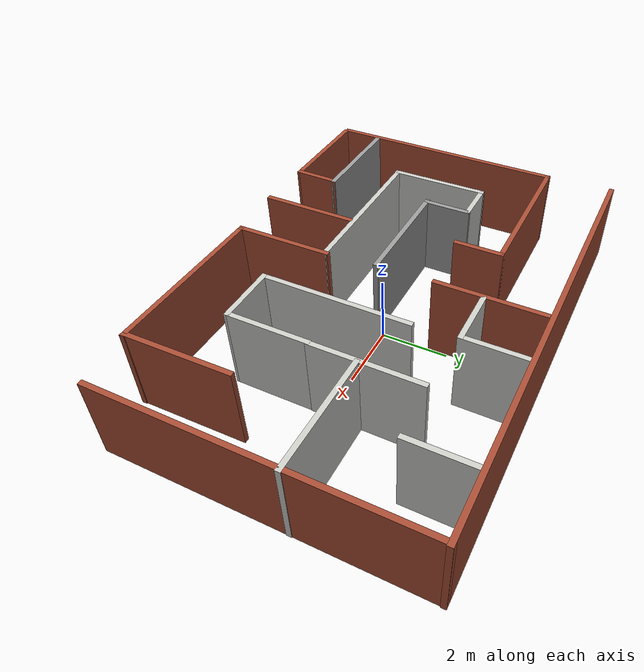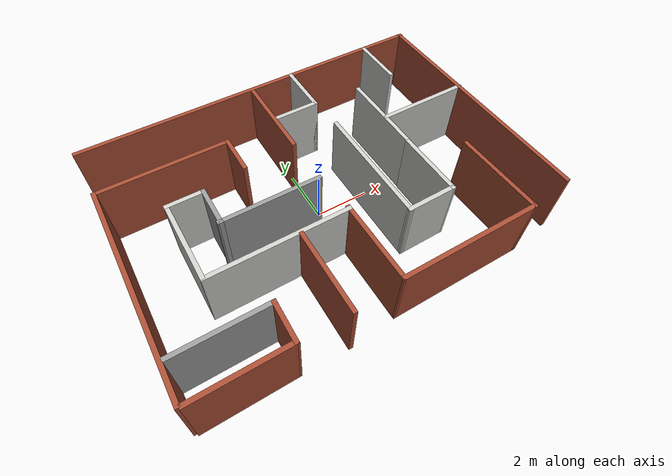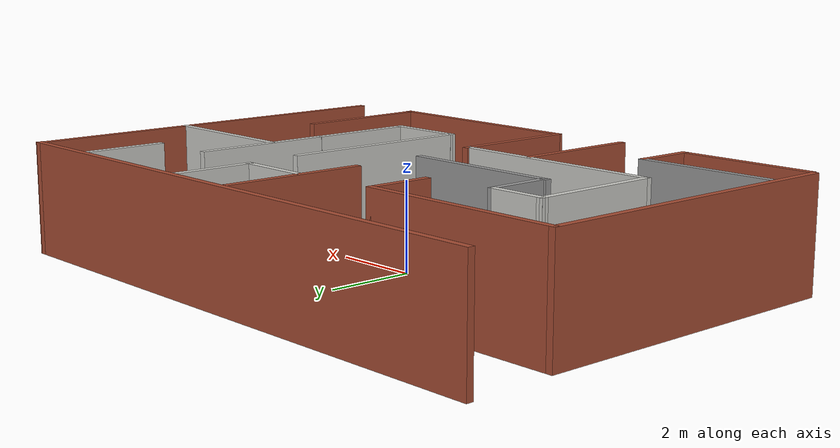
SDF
<?xml version='1.0'?>
<sdf version='1.7'>
  <model name='wall_maze'>
    <link name='Wall_0'>
      <pose>-6.65049 -0.970685 0 0 -0 1.5708</pose>
      <self_collide>0</self_collide>
      <enable_wind>0</enable_wind>
      <kinematic>0</kinematic>
      <visual name='Wall_0_Visual'>
        <pose>0 0 1.25 0 -0 0</pose>
        <geometry>
          <box>
            <size>7.5 0.15 2.5</size>
          </box>
        </geometry>
        <material>
          <script>
            <uri>file://media/materials/scripts/gazebo.material</uri>
            <name>Gazebo/Bricks</name>
          </script>
          <ambient>1 1 1 1</ambient>
          <shader type='pixel'/>
        </material>
        <meta>
          <layer>0</layer>
        </meta>
        <transparency>0</transparency>
        <cast_shadows>1</cast_shadows>
      </visual>
      <collision name='Wall_0_Collision'>
        <laser_retro>0</laser_retro>
        <max_contacts>10</max_contacts>
        <pose>0 0 1.25 0 -0 0</pose>
        <geometry>
          <box>
            <size>7.5 0.15 2.5</size>
          </box>
        </geometry>
        <surface>
          <friction>
            <ode>
              <mu>1</mu>
              <mu2>1</mu2>
              <fdir1>0 0 0</fdir1>
              <slip1>0</slip1>
              <slip2>0</slip2>
            </ode>
            <torsional>
              <coefficient>1</coefficient>
              <patch_radius>0</patch_radius>
              <surface_radius>0</surface_radius>
              <use_patch_radius>1</use_patch_radius>
              <ode>
                <slip>0</slip>
              </ode>
            </torsional>
          </friction>
          <bounce>
            <restitution_coefficient>0</restitution_coefficient>
            <threshold>1e+06</threshold>
          </bounce>
          <contact>
            <collide_without_contact>0</collide_without_contact>
            <collide_without_contact_bitmask>1</collide_without_contact_bitmask>
            <collide_bitmask>1</collide_bitmask>
            <ode>
              <soft_cfm>0</soft_cfm>
              <soft_erp>0.2</soft_erp>
              <kp>1e+13</kp>
              <kd>1</kd>
              <max_vel>0.01</max_vel>
              <min_depth>0</min_depth>
            </ode>
            <bullet>
              <split_impulse>1</split_impulse>
              <split_impulse_penetration_threshold>-0.01</split_impulse_penetration_threshold>
              <soft_cfm>0</soft_cfm>
              <soft_erp>0.2</soft_erp>
              <kp>1e+13</kp>
              <kd>1</kd>
            </bullet>
          </contact>
        </surface>
      </collision>
    </link>
    <link name='Wall_1'>
      <pose>-4.35049 2.70431 0 0 -0 0</pose>
      <self_collide>0</self_collide>
      <enable_wind>0</enable_wind>
      <kinematic>0</kinematic>
      <visual name='Wall_1_Visual'>
        <pose>0 0 1.25 0 -0 0</pose>
        <geometry>
          <box>
            <size>4.75 0.15 2.5</size>
          </box>
        </geometry>
        <material>
          <script>
            <uri>file://media/materials/scripts/gazebo.material</uri>
            <name>Gazebo/Bricks</name>
          </script>
          <ambient>1 1 1 1</ambient>
          <shader type='pixel'/>
        </material>
        <meta>
          <layer>0</layer>
        </meta>
        <transparency>0</transparency>
        <cast_shadows>1</cast_shadows>
      </visual>
      <collision name='Wall_1_Collision'>
        <laser_retro>0</laser_retro>
        <max_contacts>10</max_contacts>
        <pose>0 0 1.25 0 -0 0</pose>
        <geometry>
          <box>
            <size>4.75 0.15 2.5</size>
          </box>
        </geometry>
        <surface>
          <friction>
            <ode>
              <mu>1</mu>
              <mu2>1</mu2>
              <fdir1>0 0 0</fdir1>
              <slip1>0</slip1>
              <slip2>0</slip2>
            </ode>
            <torsional>
              <coefficient>1</coefficient>
              <patch_radius>0</patch_radius>
              <surface_radius>0</surface_radius>
              <use_patch_radius>1</use_patch_radius>
              <ode>
                <slip>0</slip>
              </ode>
            </torsional>
          </friction>
          <bounce>
            <restitution_coefficient>0</restitution_coefficient>
            <threshold>1e+06</threshold>
          </bounce>
          <contact>
            <collide_without_contact>0</collide_without_contact>
            <collide_without_contact_bitmask>1</collide_without_contact_bitmask>
            <collide_bitmask>1</collide_bitmask>
            <ode>
              <soft_cfm>0</soft_cfm>
              <soft_erp>0.2</soft_erp>
              <kp>1e+13</kp>
              <kd>1</kd>
              <max_vel>0.01</max_vel>
              <min_depth>0</min_depth>
            </ode>
            <bullet>
              <split_impulse>1</split_impulse>
              <split_impulse_penetration_threshold>-0.01</split_impulse_penetration_threshold>
              <soft_cfm>0</soft_cfm>
              <soft_erp>0.2</soft_erp>
              <kp>1e+13</kp>
              <kd>1</kd>
            </bullet>
          </contact>
        </surface>
      </collision>
    </link>
    <link name='Wall_12'>
      <pose>-0.144499 3.03778 0 0 0 -1.5708</pose>
      <self_collide>0</self_collide>
      <enable_wind>0</enable_wind>
      <kinematic>0</kinematic>
      <visual name='Wall_12_Visual'>
        <pose>0 0 1.25 0 -0 0</pose>
        <geometry>
          <box>
            <size>3.25 0.15 2.5</size>
          </box>
        </geometry>
        <material>
          <script>
            <uri>file://media/materials/scripts/gazebo.material</uri>
            <name>Gazebo/Bricks</name>
          </script>
          <ambient>1 1 1 1</ambient>
          <shader type='pixel'/>
        </material>
        <meta>
          <layer>0</layer>
        </meta>
        <transparency>0</transparency>
        <cast_shadows>1</cast_shadows>
      </visual>
      <collision name='Wall_12_Collision'>
        <laser_retro>0</laser_retro>
        <max_contacts>10</max_contacts>
        <pose>0 0 1.25 0 -0 0</pose>
        <geometry>
          <box>
            <size>3.25 0.15 2.5</size>
          </box>
        </geometry>
        <surface>
          <friction>
            <ode>
              <mu>1</mu>
              <mu2>1</mu2>
              <fdir1>0 0 0</fdir1>
              <slip1>0</slip1>
              <slip2>0</slip2>
            </ode>
            <torsional>
              <coefficient>1</coefficient>
              <patch_radius>0</patch_radius>
              <surface_radius>0</surface_radius>
              <use_patch_radius>1</use_patch_radius>
              <ode>
                <slip>0</slip>
              </ode>
            </torsional>
          </friction>
          <bounce>
            <restitution_coefficient>0</restitution_coefficient>
            <threshold>1e+06</threshold>
          </bounce>
          <contact>
            <collide_without_contact>0</collide_without_contact>
            <collide_without_contact_bitmask>1</collide_without_contact_bitmask>
            <collide_bitmask>1</collide_bitmask>
            <ode>
              <soft_cfm>0</soft_cfm>
              <soft_erp>0.2</soft_erp>
              <kp>1e+13</kp>
              <kd>1</kd>
              <max_vel>0.01</max_vel>
              <min_depth>0</min_depth>
            </ode>
            <bullet>
              <split_impulse>1</split_impulse>
              <split_impulse_penetration_threshold>-0.01</split_impulse_penetration_threshold>
              <soft_cfm>0</soft_cfm>
              <soft_erp>0.2</soft_erp>
              <kp>1e+13</kp>
              <kd>1</kd>
            </bullet>
          </contact>
        </surface>
      </collision>
    </link>
    <link name='Wall_15'>
      <pose>-1.89977 -0.262641 0 0 -0 3.14159</pose>
      <self_collide>0</self_collide>
      <enable_wind>0</enable_wind>
      <kinematic>0</kinematic>
      <visual name='Wall_15_Visual'>
        <pose>0 0 1.25 0 -0 0</pose>
        <geometry>
          <box>
            <size>3.66191 0.15 2.5</size>
          </box>
        </geometry>
        <material>
          <script>
            <uri>file://media/materials/scripts/gazebo.material</uri>
            <name>Gazebo/Grey</name>
          </script>
          <ambient>1 1 1 1</ambient>
          <shader type='pixel'/>
        </material>
        <meta>
          <layer>0</layer>
        </meta>
        <transparency>0</transparency>
        <cast_shadows>1</cast_shadows>
      </visual>
      <collision name='Wall_15_Collision'>
        <laser_retro>0</laser_retro>
        <max_contacts>10</max_contacts>
        <pose>0 0 1.25 0 -0 0</pose>
        <geometry>
          <box>
            <size>3.66191 0.15 2.5</size>
          </box>
        </geometry>
        <surface>
          <friction>
            <ode>
              <mu>1</mu>
              <mu2>1</mu2>
              <fdir1>0 0 0</fdir1>
              <slip1>0</slip1>
              <slip2>0</slip2>
            </ode>
            <torsional>
              <coefficient>1</coefficient>
              <patch_radius>0</patch_radius>
              <surface_radius>0</surface_radius>
              <use_patch_radius>1</use_patch_radius>
              <ode>
                <slip>0</slip>
              </ode>
            </torsional>
          </friction>
          <bounce>
            <restitution_coefficient>0</restitution_coefficient>
            <threshold>1e+06</threshold>
          </bounce>
          <contact>
            <collide_without_contact>0</collide_without_contact>
            <collide_without_contact_bitmask>1</collide_without_contact_bitmask>
            <collide_bitmask>1</collide_bitmask>
            <ode>
              <soft_cfm>0</soft_cfm>
              <soft_erp>0.2</soft_erp>
              <kp>1e+13</kp>
              <kd>1</kd>
              <max_vel>0.01</max_vel>
              <min_depth>0</min_depth>
            </ode>
            <bullet>
              <split_impulse>1</split_impulse>
              <split_impulse_penetration_threshold>-0.01</split_impulse_penetration_threshold>
              <soft_cfm>0</soft_cfm>
              <soft_erp>0.2</soft_erp>
              <kp>1e+13</kp>
              <kd>1</kd>
            </bullet>
          </contact>
        </surface>
      </collision>
    </link>
    <link name='Wall_18'>
      <pose>-3.60946 0.412359 0 0 -0 1.5708</pose>
      <self_collide>0</self_collide>
      <enable_wind>0</enable_wind>
      <kinematic>0</kinematic>
      <visual name='Wall_18_Visual'>
        <pose>0 0 1.25 0 -0 0</pose>
        <geometry>
          <box>
            <size>1.5 0.15 2.5</size>
          </box>
        </geometry>
        <material>
          <script>
            <uri>file://media/materials/scripts/gazebo.material</uri>
            <name>Gazebo/Grey</name>
          </script>
          <ambient>1 1 1 1</ambient>
          <shader type='pixel'/>
        </material>
        <meta>
          <layer>0</layer>
        </meta>
        <transparency>0</transparency>
        <cast_shadows>1</cast_shadows>
      </visual>
      <collision name='Wall_18_Collision'>
        <laser_retro>0</laser_retro>
        <max_contacts>10</max_contacts>
        <pose>0 0 1.25 0 -0 0</pose>
        <geometry>
          <box>
            <size>1.5 0.15 2.5</size>
          </box>
        </geometry>
        <surface>
          <friction>
            <ode>
              <mu>1</mu>
              <mu2>1</mu2>
              <fdir1>0 0 0</fdir1>
              <slip1>0</slip1>
              <slip2>0</slip2>
            </ode>
            <torsional>
              <coefficient>1</coefficient>
              <patch_radius>0</patch_radius>
              <surface_radius>0</surface_radius>
              <use_patch_radius>1</use_patch_radius>
              <ode>
                <slip>0</slip>
              </ode>
            </torsional>
          </friction>
          <bounce>
            <restitution_coefficient>0</restitution_coefficient>
            <threshold>1e+06</threshold>
          </bounce>
          <contact>
            <collide_without_contact>0</collide_without_contact>
            <collide_without_contact_bitmask>1</collide_without_contact_bitmask>
            <collide_bitmask>1</collide_bitmask>
            <ode>
              <soft_cfm>0</soft_cfm>
              <soft_erp>0.2</soft_erp>
              <kp>1e+13</kp>
              <kd>1</kd>
              <max_vel>0.01</max_vel>
              <min_depth>0</min_depth>
            </ode>
            <bullet>
              <split_impulse>1</split_impulse>
              <split_impulse_penetration_threshold>-0.01</split_impulse_penetration_threshold>
              <soft_cfm>0</soft_cfm>
              <soft_erp>0.2</soft_erp>
              <kp>1e+13</kp>
              <kd>1</kd>
            </bullet>
          </contact>
        </surface>
      </collision>
    </link>
    <link name='Wall_19'>
      <pose>-4.24977 1.08736 0 0 -0 3.14159</pose>
      <self_collide>0</self_collide>
      <enable_wind>0</enable_wind>
      <kinematic>0</kinematic>
      <visual name='Wall_19_Visual'>
        <pose>0 0 1.25 0 -0 0</pose>
        <geometry>
          <box>
            <size>1.33809 0.15 2.5</size>
          </box>
        </geometry>
        <material>
          <script>
            <uri>file://media/materials/scripts/gazebo.material</uri>
            <name>Gazebo/CeilingTiled</name>
          </script>
          <ambient>1 1 1 1</ambient>
          <shader type='pixel'/>
        </material>
        <meta>
          <layer>0</layer>
        </meta>
        <transparency>0</transparency>
        <cast_shadows>1</cast_shadows>
      </visual>
      <collision name='Wall_19_Collision'>
        <laser_retro>0</laser_retro>
        <max_contacts>10</max_contacts>
        <pose>0 0 1.25 0 -0 0</pose>
        <geometry>
          <box>
            <size>1.33809 0.15 2.5</size>
          </box>
        </geometry>
        <surface>
          <friction>
            <ode>
              <mu>1</mu>
              <mu2>1</mu2>
              <fdir1>0 0 0</fdir1>
              <slip1>0</slip1>
              <slip2>0</slip2>
            </ode>
            <torsional>
              <coefficient>1</coefficient>
              <patch_radius>0</patch_radius>
              <surface_radius>0</surface_radius>
              <use_patch_radius>1</use_patch_radius>
              <ode>
                <slip>0</slip>
              </ode>
            </torsional>
          </friction>
          <bounce>
            <restitution_coefficient>0</restitution_coefficient>
            <threshold>1e+06</threshold>
          </bounce>
          <contact>
            <collide_without_contact>0</collide_without_contact>
            <collide_without_contact_bitmask>1</collide_without_contact_bitmask>
            <collide_bitmask>1</collide_bitmask>
            <ode>
              <soft_cfm>0</soft_cfm>
              <soft_erp>0.2</soft_erp>
              <kp>1e+13</kp>
              <kd>1</kd>
              <max_vel>0.01</max_vel>
              <min_depth>0</min_depth>
            </ode>
            <bullet>
              <split_impulse>1</split_impulse>
              <split_impulse_penetration_threshold>-0.01</split_impulse_penetration_threshold>
              <soft_cfm>0</soft_cfm>
              <soft_erp>0.2</soft_erp>
              <kp>1e+13</kp>
              <kd>1</kd>
            </bullet>
          </contact>
        </surface>
      </collision>
    </link>
    <link name='Wall_2'>
      <pose>-2.05049 2.02931 0 0 0 -1.5708</pose>
      <self_collide>0</self_collide>
      <enable_wind>0</enable_wind>
      <kinematic>0</kinematic>
      <visual name='Wall_2_Visual'>
        <pose>0 0 1.25 0 -0 0</pose>
        <geometry>
          <box>
            <size>1.5 0.15 2.5</size>
          </box>
        </geometry>
        <material>
          <script>
            <uri>file://media/materials/scripts/gazebo.material</uri>
            <name>Gazebo/Bricks</name>
          </script>
          <ambient>1 1 1 1</ambient>
          <shader type='pixel'/>
        </material>
        <meta>
          <layer>0</layer>
        </meta>
        <transparency>0</transparency>
        <cast_shadows>1</cast_shadows>
      </visual>
      <collision name='Wall_2_Collision'>
        <laser_retro>0</laser_retro>
        <max_contacts>10</max_contacts>
        <pose>0 0 1.25 0 -0 0</pose>
        <geometry>
          <box>
            <size>1.5 0.15 2.5</size>
          </box>
        </geometry>
        <surface>
          <friction>
            <ode>
              <mu>1</mu>
              <mu2>1</mu2>
              <fdir1>0 0 0</fdir1>
              <slip1>0</slip1>
              <slip2>0</slip2>
            </ode>
            <torsional>
              <coefficient>1</coefficient>
              <patch_radius>0</patch_radius>
              <surface_radius>0</surface_radius>
              <use_patch_radius>1</use_patch_radius>
              <ode>
                <slip>0</slip>
              </ode>
            </torsional>
          </friction>
          <bounce>
            <restitution_coefficient>0</restitution_coefficient>
            <threshold>1e+06</threshold>
          </bounce>
          <contact>
            <collide_without_contact>0</collide_without_contact>
            <collide_without_contact_bitmask>1</collide_without_contact_bitmask>
            <collide_bitmask>1</collide_bitmask>
            <ode>
              <soft_cfm>0</soft_cfm>
              <soft_erp>0.2</soft_erp>
              <kp>1e+13</kp>
              <kd>1</kd>
              <max_vel>0.01</max_vel>
              <min_depth>0</min_depth>
            </ode>
            <bullet>
              <split_impulse>1</split_impulse>
              <split_impulse_penetration_threshold>-0.01</split_impulse_penetration_threshold>
              <soft_cfm>0</soft_cfm>
              <soft_erp>0.2</soft_erp>
              <kp>1e+13</kp>
              <kd>1</kd>
            </bullet>
          </contact>
        </surface>
      </collision>
    </link>
    <link name='Wall_20'>
      <pose>-4.83225 -0.335423 0 0 0 -1.56267</pose>
      <self_collide>0</self_collide>
      <enable_wind>0</enable_wind>
      <kinematic>0</kinematic>
      <visual name='Wall_20_Visual'>
        <pose>0 0 1.25 0 -0 0</pose>
        <geometry>
          <box>
            <size>2.99566 0.15 2.5</size>
          </box>
        </geometry>
        <material>
          <script>
            <uri>file://media/materials/scripts/gazebo.material</uri>
            <name>Gazebo/CeilingTiled</name>
          </script>
          <ambient>1 1 1 1</ambient>
          <shader type='pixel'/>
        </material>
        <meta>
          <layer>0</layer>
        </meta>
        <transparency>0</transparency>
        <cast_shadows>1</cast_shadows>
      </visual>
      <collision name='Wall_20_Collision'>
        <laser_retro>0</laser_retro>
        <max_contacts>10</max_contacts>
        <pose>0 0 1.25 0 -0 0</pose>
        <geometry>
          <box>
            <size>2.99566 0.15 2.5</size>
          </box>
        </geometry>
        <surface>
          <friction>
            <ode>
              <mu>1</mu>
              <mu2>1</mu2>
              <fdir1>0 0 0</fdir1>
              <slip1>0</slip1>
              <slip2>0</slip2>
            </ode>
            <torsional>
              <coefficient>1</coefficient>
              <patch_radius>0</patch_radius>
              <surface_radius>0</surface_radius>
              <use_patch_radius>1</use_patch_radius>
              <ode>
                <slip>0</slip>
              </ode>
            </torsional>
          </friction>
          <bounce>
            <restitution_coefficient>0</restitution_coefficient>
            <threshold>1e+06</threshold>
          </bounce>
          <contact>
            <collide_without_contact>0</collide_without_contact>
            <collide_without_contact_bitmask>1</collide_without_contact_bitmask>
            <collide_bitmask>1</collide_bitmask>
            <ode>
              <soft_cfm>0</soft_cfm>
              <soft_erp>0.2</soft_erp>
              <kp>1e+13</kp>
              <kd>1</kd>
              <max_vel>0.01</max_vel>
              <min_depth>0</min_depth>
            </ode>
            <bullet>
              <split_impulse>1</split_impulse>
              <split_impulse_penetration_threshold>-0.01</split_impulse_penetration_threshold>
              <soft_cfm>0</soft_cfm>
              <soft_erp>0.2</soft_erp>
              <kp>1e+13</kp>
              <kd>1</kd>
            </bullet>
          </contact>
        </surface>
      </collision>
    </link>
    <link name='Wall_21'>
      <pose>-2.39568 -1.80447 0 0 -0 0</pose>
      <self_collide>0</self_collide>
      <enable_wind>0</enable_wind>
      <kinematic>0</kinematic>
      <visual name='Wall_21_Visual'>
        <pose>0 0 1.25 0 -0 0</pose>
        <geometry>
          <box>
            <size>5 0.15 2.5</size>
          </box>
        </geometry>
        <material>
          <script>
            <uri>file://media/materials/scripts/gazebo.material</uri>
            <name>Gazebo/CeilingTiled</name>
          </script>
          <ambient>1 1 1 1</ambient>
          <shader type='pixel'/>
        </material>
        <meta>
          <layer>0</layer>
        </meta>
        <transparency>0</transparency>
        <cast_shadows>1</cast_shadows>
      </visual>
      <collision name='Wall_21_Collision'>
        <laser_retro>0</laser_retro>
        <max_contacts>10</max_contacts>
        <pose>0 0 1.25 0 -0 0</pose>
        <geometry>
          <box>
            <size>5 0.15 2.5</size>
          </box>
        </geometry>
        <surface>
          <friction>
            <ode>
              <mu>1</mu>
              <mu2>1</mu2>
              <fdir1>0 0 0</fdir1>
              <slip1>0</slip1>
              <slip2>0</slip2>
            </ode>
            <torsional>
              <coefficient>1</coefficient>
              <patch_radius>0</patch_radius>
              <surface_radius>0</surface_radius>
              <use_patch_radius>1</use_patch_radius>
              <ode>
                <slip>0</slip>
              </ode>
            </torsional>
          </friction>
          <bounce>
            <restitution_coefficient>0</restitution_coefficient>
            <threshold>1e+06</threshold>
          </bounce>
          <contact>
            <collide_without_contact>0</collide_without_contact>
            <collide_without_contact_bitmask>1</collide_without_contact_bitmask>
            <collide_bitmask>1</collide_bitmask>
            <ode>
              <soft_cfm>0</soft_cfm>
              <soft_erp>0.2</soft_erp>
              <kp>1e+13</kp>
              <kd>1</kd>
              <max_vel>0.01</max_vel>
              <min_depth>0</min_depth>
            </ode>
            <bullet>
              <split_impulse>1</split_impulse>
              <split_impulse_penetration_threshold>-0.01</split_impulse_penetration_threshold>
              <soft_cfm>0</soft_cfm>
              <soft_erp>0.2</soft_erp>
              <kp>1e+13</kp>
              <kd>1</kd>
            </bullet>
          </contact>
        </surface>
      </collision>
    </link>
    <link name='Wall_22'>
      <pose>0.040885 -3.18542 0 0 0 -1.56269</pose>
      <self_collide>0</self_collide>
      <enable_wind>0</enable_wind>
      <kinematic>0</kinematic>
      <visual name='Wall_22_Visual'>
        <pose>0 0 1.25 0 -0 0</pose>
        <geometry>
          <box>
            <size>3.00453 0.15 2.5</size>
          </box>
        </geometry>
        <material>
          <script>
            <uri>file://media/materials/scripts/gazebo.material</uri>
            <name>Gazebo/Bricks</name>
          </script>
          <ambient>1 1 1 1</ambient>
          <shader type='pixel'/>
        </material>
        <meta>
          <layer>0</layer>
        </meta>
        <transparency>0</transparency>
        <cast_shadows>1</cast_shadows>
      </visual>
      <collision name='Wall_22_Collision'>
        <laser_retro>0</laser_retro>
        <max_contacts>10</max_contacts>
        <pose>0 0 1.25 0 -0 0</pose>
        <geometry>
          <box>
            <size>3.00453 0.15 2.5</size>
          </box>
        </geometry>
        <surface>
          <friction>
            <ode>
              <mu>1</mu>
              <mu2>1</mu2>
              <fdir1>0 0 0</fdir1>
              <slip1>0</slip1>
              <slip2>0</slip2>
            </ode>
            <torsional>
              <coefficient>1</coefficient>
              <patch_radius>0</patch_radius>
              <surface_radius>0</surface_radius>
              <use_patch_radius>1</use_patch_radius>
              <ode>
                <slip>0</slip>
              </ode>
            </torsional>
          </friction>
          <bounce>
            <restitution_coefficient>0</restitution_coefficient>
            <threshold>1e+06</threshold>
          </bounce>
          <contact>
            <collide_without_contact>0</collide_without_contact>
            <collide_without_contact_bitmask>1</collide_without_contact_bitmask>
            <collide_bitmask>1</collide_bitmask>
            <ode>
              <soft_cfm>0</soft_cfm>
              <soft_erp>0.2</soft_erp>
              <kp>1e+13</kp>
              <kd>1</kd>
              <max_vel>0.01</max_vel>
              <min_depth>0</min_depth>
            </ode>
            <bullet>
              <split_impulse>1</split_impulse>
              <split_impulse_penetration_threshold>-0.01</split_impulse_penetration_threshold>
              <soft_cfm>0</soft_cfm>
              <soft_erp>0.2</soft_erp>
              <kp>1e+13</kp>
              <kd>1</kd>
            </bullet>
          </contact>
        </surface>
      </collision>
    </link>
    <link name='Wall_24'>
      <pose>-1.70218 -3.31782 0 0 0 -1.5708</pose>
      <self_collide>0</self_collide>
      <enable_wind>0</enable_wind>
      <kinematic>0</kinematic>
      <visual name='Wall_24_Visual'>
        <pose>0 0 1.25 0 -0 0</pose>
        <geometry>
          <box>
            <size>3 0.15 2.5</size>
          </box>
        </geometry>
        <material>
          <script>
            <uri>file://media/materials/scripts/gazebo.material</uri>
            <name>Gazebo/Bricks</name>
          </script>
          <ambient>1 1 1 1</ambient>
          <shader type='pixel'/>
        </material>
        <meta>
          <layer>0</layer>
        </meta>
        <transparency>0</transparency>
        <cast_shadows>1</cast_shadows>
      </visual>
      <collision name='Wall_24_Collision'>
        <laser_retro>0</laser_retro>
        <max_contacts>10</max_contacts>
        <pose>0 0 1.25 0 -0 0</pose>
        <geometry>
          <box>
            <size>3 0.15 2.5</size>
          </box>
        </geometry>
        <surface>
          <friction>
            <ode>
              <mu>1</mu>
              <mu2>1</mu2>
              <fdir1>0 0 0</fdir1>
              <slip1>0</slip1>
              <slip2>0</slip2>
            </ode>
            <torsional>
              <coefficient>1</coefficient>
              <patch_radius>0</patch_radius>
              <surface_radius>0</surface_radius>
              <use_patch_radius>1</use_patch_radius>
              <ode>
                <slip>0</slip>
              </ode>
            </torsional>
          </friction>
          <bounce>
            <restitution_coefficient>0</restitution_coefficient>
            <threshold>1e+06</threshold>
          </bounce>
          <contact>
            <collide_without_contact>0</collide_without_contact>
            <collide_without_contact_bitmask>1</collide_without_contact_bitmask>
            <collide_bitmask>1</collide_bitmask>
            <ode>
              <soft_cfm>0</soft_cfm>
              <soft_erp>0.2</soft_erp>
              <kp>1e+13</kp>
              <kd>1</kd>
              <max_vel>0.01</max_vel>
              <min_depth>0</min_depth>
            </ode>
            <bullet>
              <split_impulse>1</split_impulse>
              <split_impulse_penetration_threshold>-0.01</split_impulse_penetration_threshold>
              <soft_cfm>0</soft_cfm>
              <soft_erp>0.2</soft_erp>
              <kp>1e+13</kp>
              <kd>1</kd>
            </bullet>
          </contact>
        </surface>
      </collision>
    </link>
    <link name='Wall_27'>
      <pose>-4.97244 -3.42811 0 0 -0 0</pose>
      <self_collide>0</self_collide>
      <enable_wind>0</enable_wind>
      <kinematic>0</kinematic>
      <visual name='Wall_27_Visual'>
        <pose>0 0 1.25 0 -0 0</pose>
        <geometry>
          <box>
            <size>3.25 0.15 2.5</size>
          </box>
        </geometry>
        <material>
          <script>
            <uri>file://media/materials/scripts/gazebo.material</uri>
            <name>Gazebo/Grey</name>
          </script>
          <ambient>1 1 1 1</ambient>
          <shader type='pixel'/>
        </material>
        <meta>
          <layer>0</layer>
        </meta>
        <transparency>0</transparency>
        <cast_shadows>1</cast_shadows>
      </visual>
      <collision name='Wall_27_Collision'>
        <laser_retro>0</laser_retro>
        <max_contacts>10</max_contacts>
        <pose>0 0 1.25 0 -0 0</pose>
        <geometry>
          <box>
            <size>3.25 0.15 2.5</size>
          </box>
        </geometry>
        <surface>
          <friction>
            <ode>
              <mu>1</mu>
              <mu2>1</mu2>
              <fdir1>0 0 0</fdir1>
              <slip1>0</slip1>
              <slip2>0</slip2>
            </ode>
            <torsional>
              <coefficient>1</coefficient>
              <patch_radius>0</patch_radius>
              <surface_radius>0</surface_radius>
              <use_patch_radius>1</use_patch_radius>
              <ode>
                <slip>0</slip>
              </ode>
            </torsional>
          </friction>
          <bounce>
            <restitution_coefficient>0</restitution_coefficient>
            <threshold>1e+06</threshold>
          </bounce>
          <contact>
            <collide_without_contact>0</collide_without_contact>
            <collide_without_contact_bitmask>1</collide_without_contact_bitmask>
            <collide_bitmask>1</collide_bitmask>
            <ode>
              <soft_cfm>0</soft_cfm>
              <soft_erp>0.2</soft_erp>
              <kp>1e+13</kp>
              <kd>1</kd>
              <max_vel>0.01</max_vel>
              <min_depth>0</min_depth>
            </ode>
            <bullet>
              <split_impulse>1</split_impulse>
              <split_impulse_penetration_threshold>-0.01</split_impulse_penetration_threshold>
              <soft_cfm>0</soft_cfm>
              <soft_erp>0.2</soft_erp>
              <kp>1e+13</kp>
              <kd>1</kd>
            </bullet>
          </contact>
        </surface>
      </collision>
    </link>
    <link name='Wall_30'>
      <pose>-3.43401 -4.07998 0 0 0 -1.58919</pose>
      <self_collide>0</self_collide>
      <enable_wind>0</enable_wind>
      <kinematic>0</kinematic>
      <visual name='Wall_30_Visual'>
        <pose>0 0 1.25 0 -0 0</pose>
        <geometry>
          <box>
            <size>1.40769 0.15 2.5</size>
          </box>
        </geometry>
        <material>
          <script>
            <uri>file://media/materials/scripts/gazebo.material</uri>
            <name>Gazebo/Bricks</name>
          </script>
          <ambient>1 1 1 1</ambient>
          <shader type='pixel'/>
        </material>
        <meta>
          <layer>0</layer>
        </meta>
        <transparency>0</transparency>
        <cast_shadows>1</cast_shadows>
      </visual>
      <collision name='Wall_30_Collision'>
        <laser_retro>0</laser_retro>
        <max_contacts>10</max_contacts>
        <pose>0 0 1.25 0 -0 0</pose>
        <geometry>
          <box>
            <size>1.40769 0.15 2.5</size>
          </box>
        </geometry>
        <surface>
          <friction>
            <ode>
              <mu>1</mu>
              <mu2>1</mu2>
              <fdir1>0 0 0</fdir1>
              <slip1>0</slip1>
              <slip2>0</slip2>
            </ode>
            <torsional>
              <coefficient>1</coefficient>
              <patch_radius>0</patch_radius>
              <surface_radius>0</surface_radius>
              <use_patch_radius>1</use_patch_radius>
              <ode>
                <slip>0</slip>
              </ode>
            </torsional>
          </friction>
          <bounce>
            <restitution_coefficient>0</restitution_coefficient>
            <threshold>1e+06</threshold>
          </bounce>
          <contact>
            <collide_without_contact>0</collide_without_contact>
            <collide_without_contact_bitmask>1</collide_without_contact_bitmask>
            <collide_bitmask>1</collide_bitmask>
            <ode>
              <soft_cfm>0</soft_cfm>
              <soft_erp>0.2</soft_erp>
              <kp>1e+13</kp>
              <kd>1</kd>
              <max_vel>0.01</max_vel>
              <min_depth>0</min_depth>
            </ode>
            <bullet>
              <split_impulse>1</split_impulse>
              <split_impulse_penetration_threshold>-0.01</split_impulse_penetration_threshold>
              <soft_cfm>0</soft_cfm>
              <soft_erp>0.2</soft_erp>
              <kp>1e+13</kp>
              <kd>1</kd>
            </bullet>
          </contact>
        </surface>
      </collision>
    </link>
    <link name='Wall_32'>
      <pose>-4.99557 -4.70872 0 0 -0 3.14159</pose>
      <self_collide>0</self_collide>
      <enable_wind>0</enable_wind>
      <kinematic>0</kinematic>
      <visual name='Wall_32_Visual'>
        <pose>0 0 1.25 0 -0 0</pose>
        <geometry>
          <box>
            <size>3.25 0.15 2.5</size>
          </box>
        </geometry>
        <material>
          <script>
            <uri>file://media/materials/scripts/gazebo.material</uri>
            <name>Gazebo/Bricks</name>
          </script>
          <ambient>1 1 1 1</ambient>
          <shader type='pixel'/>
        </material>
        <meta>
          <layer>0</layer>
        </meta>
        <transparency>0</transparency>
        <cast_shadows>1</cast_shadows>
      </visual>
      <collision name='Wall_32_Collision'>
        <laser_retro>0</laser_retro>
        <max_contacts>10</max_contacts>
        <pose>0 0 1.25 0 -0 0</pose>
        <geometry>
          <box>
            <size>3.25 0.15 2.5</size>
          </box>
        </geometry>
        <surface>
          <friction>
            <ode>
              <mu>1</mu>
              <mu2>1</mu2>
              <fdir1>0 0 0</fdir1>
              <slip1>0</slip1>
              <slip2>0</slip2>
            </ode>
            <torsional>
              <coefficient>1</coefficient>
              <patch_radius>0</patch_radius>
              <surface_radius>0</surface_radius>
              <use_patch_radius>1</use_patch_radius>
              <ode>
                <slip>0</slip>
              </ode>
            </torsional>
          </friction>
          <bounce>
            <restitution_coefficient>0</restitution_coefficient>
            <threshold>1e+06</threshold>
          </bounce>
          <contact>
            <collide_without_contact>0</collide_without_contact>
            <collide_without_contact_bitmask>1</collide_without_contact_bitmask>
            <collide_bitmask>1</collide_bitmask>
            <ode>
              <soft_cfm>0</soft_cfm>
              <soft_erp>0.2</soft_erp>
              <kp>1e+13</kp>
              <kd>1</kd>
              <max_vel>0.01</max_vel>
              <min_depth>0</min_depth>
            </ode>
            <bullet>
              <split_impulse>1</split_impulse>
              <split_impulse_penetration_threshold>-0.01</split_impulse_penetration_threshold>
              <soft_cfm>0</soft_cfm>
              <soft_erp>0.2</soft_erp>
              <kp>1e+13</kp>
              <kd>1</kd>
            </bullet>
          </contact>
        </surface>
      </collision>
    </link>
    <link name='Wall_35'>
      <pose>0.725751 2.88523 0 0 -0 0</pose>
      <self_collide>0</self_collide>
      <enable_wind>0</enable_wind>
      <kinematic>0</kinematic>
      <visual name='Wall_35_Visual'>
        <pose>0 0 1.25 0 -0 0</pose>
        <geometry>
          <box>
            <size>1.75 0.15 2.5</size>
          </box>
        </geometry>
        <material>
          <script>
            <uri>file://media/materials/scripts/gazebo.material</uri>
            <name>Gazebo/CeilingTiled</name>
          </script>
          <ambient>1 1 1 1</ambient>
          <shader type='pixel'/>
        </material>
        <meta>
          <layer>0</layer>
        </meta>
        <transparency>0</transparency>
        <cast_shadows>1</cast_shadows>
      </visual>
      <collision name='Wall_35_Collision'>
        <laser_retro>0</laser_retro>
        <max_contacts>10</max_contacts>
        <pose>0 0 1.25 0 -0 0</pose>
        <geometry>
          <box>
            <size>1.75 0.15 2.5</size>
          </box>
        </geometry>
        <surface>
          <friction>
            <ode>
              <mu>1</mu>
              <mu2>1</mu2>
              <fdir1>0 0 0</fdir1>
              <slip1>0</slip1>
              <slip2>0</slip2>
            </ode>
            <torsional>
              <coefficient>1</coefficient>
              <patch_radius>0</patch_radius>
              <surface_radius>0</surface_radius>
              <use_patch_radius>1</use_patch_radius>
              <ode>
                <slip>0</slip>
              </ode>
            </torsional>
          </friction>
          <bounce>
            <restitution_coefficient>0</restitution_coefficient>
            <threshold>1e+06</threshold>
          </bounce>
          <contact>
            <collide_without_contact>0</collide_without_contact>
            <collide_without_contact_bitmask>1</collide_without_contact_bitmask>
            <collide_bitmask>1</collide_bitmask>
            <ode>
              <soft_cfm>0</soft_cfm>
              <soft_erp>0.2</soft_erp>
              <kp>1e+13</kp>
              <kd>1</kd>
              <max_vel>0.01</max_vel>
              <min_depth>0</min_depth>
            </ode>
            <bullet>
              <split_impulse>1</split_impulse>
              <split_impulse_penetration_threshold>-0.01</split_impulse_penetration_threshold>
              <soft_cfm>0</soft_cfm>
              <soft_erp>0.2</soft_erp>
              <kp>1e+13</kp>
              <kd>1</kd>
            </bullet>
          </contact>
        </surface>
      </collision>
    </link>
    <link name='Wall_37'>
      <pose>1.52575 3.81023 0 0 -0 1.5708</pose>
      <self_collide>0</self_collide>
      <enable_wind>0</enable_wind>
      <kinematic>0</kinematic>
      <visual name='Wall_37_Visual'>
        <pose>0 0 1.25 0 -0 0</pose>
        <geometry>
          <box>
            <size>2 0.15 2.5</size>
          </box>
        </geometry>
        <material>
          <script>
            <uri>file://media/materials/scripts/gazebo.material</uri>
            <name>Gazebo/CeilingTiled</name>
          </script>
          <ambient>1 1 1 1</ambient>
          <shader type='pixel'/>
        </material>
        <meta>
          <layer>0</layer>
        </meta>
        <transparency>0</transparency>
        <cast_shadows>1</cast_shadows>
      </visual>
      <collision name='Wall_37_Collision'>
        <laser_retro>0</laser_retro>
        <max_contacts>10</max_contacts>
        <pose>0 0 1.25 0 -0 0</pose>
        <geometry>
          <box>
            <size>2 0.15 2.5</size>
          </box>
        </geometry>
        <surface>
          <friction>
            <ode>
              <mu>1</mu>
              <mu2>1</mu2>
              <fdir1>0 0 0</fdir1>
              <slip1>0</slip1>
              <slip2>0</slip2>
            </ode>
            <torsional>
              <coefficient>1</coefficient>
              <patch_radius>0</patch_radius>
              <surface_radius>0</surface_radius>
              <use_patch_radius>1</use_patch_radius>
              <ode>
                <slip>0</slip>
              </ode>
            </torsional>
          </friction>
          <bounce>
            <restitution_coefficient>0</restitution_coefficient>
            <threshold>1e+06</threshold>
          </bounce>
          <contact>
            <collide_without_contact>0</collide_without_contact>
            <collide_without_contact_bitmask>1</collide_without_contact_bitmask>
            <collide_bitmask>1</collide_bitmask>
            <ode>
              <soft_cfm>0</soft_cfm>
              <soft_erp>0.2</soft_erp>
              <kp>1e+13</kp>
              <kd>1</kd>
              <max_vel>0.01</max_vel>
              <min_depth>0</min_depth>
            </ode>
            <bullet>
              <split_impulse>1</split_impulse>
              <split_impulse_penetration_threshold>-0.01</split_impulse_penetration_threshold>
              <soft_cfm>0</soft_cfm>
              <soft_erp>0.2</soft_erp>
              <kp>1e+13</kp>
              <kd>1</kd>
            </bullet>
          </contact>
        </surface>
      </collision>
    </link>
    <link name='Wall_39'>
      <pose>1.63978 -0.601521 0 0 0 -1.5708</pose>
      <self_collide>0</self_collide>
      <enable_wind>0</enable_wind>
      <kinematic>0</kinematic>
      <visual name='Wall_39_Visual'>
        <pose>0 0 1.25 0 -0 0</pose>
        <geometry>
          <box>
            <size>4.5 0.15 2.5</size>
          </box>
        </geometry>
        <material>
          <script>
            <uri>file://media/materials/scripts/gazebo.material</uri>
            <name>Gazebo/CeilingTiled</name>
          </script>
          <ambient>1 1 1 1</ambient>
          <shader type='pixel'/>
        </material>
        <meta>
          <layer>0</layer>
        </meta>
        <transparency>0</transparency>
        <cast_shadows>1</cast_shadows>
      </visual>
      <collision name='Wall_39_Collision'>
        <laser_retro>0</laser_retro>
        <max_contacts>10</max_contacts>
        <pose>0 0 1.25 0 -0 0</pose>
        <geometry>
          <box>
            <size>4.5 0.15 2.5</size>
          </box>
        </geometry>
        <surface>
          <friction>
            <ode>
              <mu>1</mu>
              <mu2>1</mu2>
              <fdir1>0 0 0</fdir1>
              <slip1>0</slip1>
              <slip2>0</slip2>
            </ode>
            <torsional>
              <coefficient>1</coefficient>
              <patch_radius>0</patch_radius>
              <surface_radius>0</surface_radius>
              <use_patch_radius>1</use_patch_radius>
              <ode>
                <slip>0</slip>
              </ode>
            </torsional>
          </friction>
          <bounce>
            <restitution_coefficient>0</restitution_coefficient>
            <threshold>1e+06</threshold>
          </bounce>
          <contact>
            <collide_without_contact>0</collide_without_contact>
            <collide_without_contact_bitmask>1</collide_without_contact_bitmask>
            <collide_bitmask>1</collide_bitmask>
            <ode>
              <soft_cfm>0</soft_cfm>
              <soft_erp>0.2</soft_erp>
              <kp>1e+13</kp>
              <kd>1</kd>
              <max_vel>0.01</max_vel>
              <min_depth>0</min_depth>
            </ode>
            <bullet>
              <split_impulse>1</split_impulse>
              <split_impulse_penetration_threshold>-0.01</split_impulse_penetration_threshold>
              <soft_cfm>0</soft_cfm>
              <soft_erp>0.2</soft_erp>
              <kp>1e+13</kp>
              <kd>1</kd>
            </bullet>
          </contact>
        </surface>
      </collision>
    </link>
    <link name='Wall_40'>
      <pose>2.48093 -2.76778 0 0 -0 0.010396</pose>
      <self_collide>0</self_collide>
      <enable_wind>0</enable_wind>
      <kinematic>0</kinematic>
      <visual name='Wall_40_Visual'>
        <pose>0 0 1.25 0 -0 0</pose>
        <geometry>
          <box>
            <size>1.8324 0.15 2.5</size>
          </box>
        </geometry>
        <material>
          <script>
            <uri>file://media/materials/scripts/gazebo.material</uri>
            <name>Gazebo/CeilingTiled</name>
          </script>
          <ambient>1 1 1 1</ambient>
          <shader type='pixel'/>
        </material>
        <meta>
          <layer>0</layer>
        </meta>
        <transparency>0</transparency>
        <cast_shadows>1</cast_shadows>
      </visual>
      <collision name='Wall_40_Collision'>
        <laser_retro>0</laser_retro>
        <max_contacts>10</max_contacts>
        <pose>0 0 1.25 0 -0 0</pose>
        <geometry>
          <box>
            <size>1.8324 0.15 2.5</size>
          </box>
        </geometry>
        <surface>
          <friction>
            <ode>
              <mu>1</mu>
              <mu2>1</mu2>
              <fdir1>0 0 0</fdir1>
              <slip1>0</slip1>
              <slip2>0</slip2>
            </ode>
            <torsional>
              <coefficient>1</coefficient>
              <patch_radius>0</patch_radius>
              <surface_radius>0</surface_radius>
              <use_patch_radius>1</use_patch_radius>
              <ode>
                <slip>0</slip>
              </ode>
            </torsional>
          </friction>
          <bounce>
            <restitution_coefficient>0</restitution_coefficient>
            <threshold>1e+06</threshold>
          </bounce>
          <contact>
            <collide_without_contact>0</collide_without_contact>
            <collide_without_contact_bitmask>1</collide_without_contact_bitmask>
            <collide_bitmask>1</collide_bitmask>
            <ode>
              <soft_cfm>0</soft_cfm>
              <soft_erp>0.2</soft_erp>
              <kp>1e+13</kp>
              <kd>1</kd>
              <max_vel>0.01</max_vel>
              <min_depth>0</min_depth>
            </ode>
            <bullet>
              <split_impulse>1</split_impulse>
              <split_impulse_penetration_threshold>-0.01</split_impulse_penetration_threshold>
              <soft_cfm>0</soft_cfm>
              <soft_erp>0.2</soft_erp>
              <kp>1e+13</kp>
              <kd>1</kd>
            </bullet>
          </contact>
        </surface>
      </collision>
    </link>
    <link name='Wall_41'>
      <pose>3.32209 -1.58403 0 0 -0 1.5708</pose>
      <self_collide>0</self_collide>
      <enable_wind>0</enable_wind>
      <kinematic>0</kinematic>
      <visual name='Wall_41_Visual'>
        <pose>0 0 1.25 0 -0 0</pose>
        <geometry>
          <box>
            <size>2.5 0.15 2.5</size>
          </box>
        </geometry>
        <material>
          <script>
            <uri>file://media/materials/scripts/gazebo.material</uri>
            <name>Gazebo/CeilingTiled</name>
          </script>
          <ambient>1 1 1 1</ambient>
          <shader type='pixel'/>
        </material>
        <meta>
          <layer>0</layer>
        </meta>
        <transparency>0</transparency>
        <cast_shadows>1</cast_shadows>
      </visual>
      <collision name='Wall_41_Collision'>
        <laser_retro>0</laser_retro>
        <max_contacts>10</max_contacts>
        <pose>0 0 1.25 0 -0 0</pose>
        <geometry>
          <box>
            <size>2.5 0.15 2.5</size>
          </box>
        </geometry>
        <surface>
          <friction>
            <ode>
              <mu>1</mu>
              <mu2>1</mu2>
              <fdir1>0 0 0</fdir1>
              <slip1>0</slip1>
              <slip2>0</slip2>
            </ode>
            <torsional>
              <coefficient>1</coefficient>
              <patch_radius>0</patch_radius>
              <surface_radius>0</surface_radius>
              <use_patch_radius>1</use_patch_radius>
              <ode>
                <slip>0</slip>
              </ode>
            </torsional>
          </friction>
          <bounce>
            <restitution_coefficient>0</restitution_coefficient>
            <threshold>1e+06</threshold>
          </bounce>
          <contact>
            <collide_without_contact>0</collide_without_contact>
            <collide_without_contact_bitmask>1</collide_without_contact_bitmask>
            <collide_bitmask>1</collide_bitmask>
            <ode>
              <soft_cfm>0</soft_cfm>
              <soft_erp>0.2</soft_erp>
              <kp>1e+13</kp>
              <kd>1</kd>
              <max_vel>0.01</max_vel>
              <min_depth>0</min_depth>
            </ode>
            <bullet>
              <split_impulse>1</split_impulse>
              <split_impulse_penetration_threshold>-0.01</split_impulse_penetration_threshold>
              <soft_cfm>0</soft_cfm>
              <soft_erp>0.2</soft_erp>
              <kp>1e+13</kp>
              <kd>1</kd>
            </bullet>
          </contact>
        </surface>
      </collision>
    </link>
    <link name='Wall_45'>
      <pose>3.33631 1.18208 0 0 -0 1.5708</pose>
      <self_collide>0</self_collide>
      <enable_wind>0</enable_wind>
      <kinematic>0</kinematic>
      <visual name='Wall_45_Visual'>
        <pose>0 0 1.25 0 -0 0</pose>
        <geometry>
          <box>
            <size>3.25 0.15 2.5</size>
          </box>
        </geometry>
        <material>
          <script>
            <uri>file://media/materials/scripts/gazebo.material</uri>
            <name>Gazebo/CeilingTiled</name>
          </script>
          <ambient>1 1 1 1</ambient>
          <shader type='pixel'/>
        </material>
        <meta>
          <layer>0</layer>
        </meta>
        <transparency>0</transparency>
        <cast_shadows>1</cast_shadows>
      </visual>
      <collision name='Wall_45_Collision'>
        <laser_retro>0</laser_retro>
        <max_contacts>10</max_contacts>
        <pose>0 0 1.25 0 -0 0</pose>
        <geometry>
          <box>
            <size>3.25 0.15 2.5</size>
          </box>
        </geometry>
        <surface>
          <friction>
            <ode>
              <mu>1</mu>
              <mu2>1</mu2>
              <fdir1>0 0 0</fdir1>
              <slip1>0</slip1>
              <slip2>0</slip2>
            </ode>
            <torsional>
              <coefficient>1</coefficient>
              <patch_radius>0</patch_radius>
              <surface_radius>0</surface_radius>
              <use_patch_radius>1</use_patch_radius>
              <ode>
                <slip>0</slip>
              </ode>
            </torsional>
          </friction>
          <bounce>
            <restitution_coefficient>0</restitution_coefficient>
            <threshold>1e+06</threshold>
          </bounce>
          <contact>
            <collide_without_contact>0</collide_without_contact>
            <collide_without_contact_bitmask>1</collide_without_contact_bitmask>
            <collide_bitmask>1</collide_bitmask>
            <ode>
              <soft_cfm>0</soft_cfm>
              <soft_erp>0.2</soft_erp>
              <kp>1e+13</kp>
              <kd>1</kd>
              <max_vel>0.01</max_vel>
              <min_depth>0</min_depth>
            </ode>
            <bullet>
              <split_impulse>1</split_impulse>
              <split_impulse_penetration_threshold>-0.01</split_impulse_penetration_threshold>
              <soft_cfm>0</soft_cfm>
              <soft_erp>0.2</soft_erp>
              <kp>1e+13</kp>
              <kd>1</kd>
            </bullet>
          </contact>
        </surface>
      </collision>
    </link>
    <link name='Wall_47'>
      <pose>2.55619 -4.61264 0 0 -0 0</pose>
      <self_collide>0</self_collide>
      <enable_wind>0</enable_wind>
      <kinematic>0</kinematic>
      <visual name='Wall_47_Visual'>
        <pose>0 0 1.25 0 -0 0</pose>
        <geometry>
          <box>
            <size>5.15748 0.15 2.5</size>
          </box>
        </geometry>
        <material>
          <script>
            <uri>file://media/materials/scripts/gazebo.material</uri>
            <name>Gazebo/Bricks</name>
          </script>
          <ambient>1 1 1 1</ambient>
          <shader type='pixel'/>
        </material>
        <meta>
          <layer>0</layer>
        </meta>
        <transparency>0</transparency>
        <cast_shadows>1</cast_shadows>
      </visual>
      <collision name='Wall_47_Collision'>
        <laser_retro>0</laser_retro>
        <max_contacts>10</max_contacts>
        <pose>0 0 1.25 0 -0 0</pose>
        <geometry>
          <box>
            <size>5.15748 0.15 2.5</size>
          </box>
        </geometry>
        <surface>
          <friction>
            <ode>
              <mu>1</mu>
              <mu2>1</mu2>
              <fdir1>0 0 0</fdir1>
              <slip1>0</slip1>
              <slip2>0</slip2>
            </ode>
            <torsional>
              <coefficient>1</coefficient>
              <patch_radius>0</patch_radius>
              <surface_radius>0</surface_radius>
              <use_patch_radius>1</use_patch_radius>
              <ode>
                <slip>0</slip>
              </ode>
            </torsional>
          </friction>
          <bounce>
            <restitution_coefficient>0</restitution_coefficient>
            <threshold>1e+06</threshold>
          </bounce>
          <contact>
            <collide_without_contact>0</collide_without_contact>
            <collide_without_contact_bitmask>1</collide_without_contact_bitmask>
            <collide_bitmask>1</collide_bitmask>
            <ode>
              <soft_cfm>0</soft_cfm>
              <soft_erp>0.2</soft_erp>
              <kp>1e+13</kp>
              <kd>1</kd>
              <max_vel>0.01</max_vel>
              <min_depth>0</min_depth>
            </ode>
            <bullet>
              <split_impulse>1</split_impulse>
              <split_impulse_penetration_threshold>-0.01</split_impulse_penetration_threshold>
              <soft_cfm>0</soft_cfm>
              <soft_erp>0.2</soft_erp>
              <kp>1e+13</kp>
              <kd>1</kd>
            </bullet>
          </contact>
        </surface>
      </collision>
    </link>
    <link name='Wall_49'>
      <pose>5.01367 -3.05108 0 0 -0 1.58561</pose>
      <self_collide>0</self_collide>
      <enable_wind>0</enable_wind>
      <kinematic>0</kinematic>
      <visual name='Wall_49_Visual'>
        <pose>0 0 1.25 0 -0 0</pose>
        <geometry>
          <box>
            <size>3.27347 0.15 2.5</size>
          </box>
        </geometry>
        <material>
          <script>
            <uri>file://media/materials/scripts/gazebo.material</uri>
            <name>Gazebo/Bricks</name>
          </script>
          <ambient>1 1 1 1</ambient>
          <shader type='pixel'/>
        </material>
        <meta>
          <layer>0</layer>
        </meta>
        <transparency>0</transparency>
        <cast_shadows>1</cast_shadows>
      </visual>
      <collision name='Wall_49_Collision'>
        <laser_retro>0</laser_retro>
        <max_contacts>10</max_contacts>
        <pose>0 0 1.25 0 -0 0</pose>
        <geometry>
          <box>
            <size>3.27347 0.15 2.5</size>
          </box>
        </geometry>
        <surface>
          <friction>
            <ode>
              <mu>1</mu>
              <mu2>1</mu2>
              <fdir1>0 0 0</fdir1>
              <slip1>0</slip1>
              <slip2>0</slip2>
            </ode>
            <torsional>
              <coefficient>1</coefficient>
              <patch_radius>0</patch_radius>
              <surface_radius>0</surface_radius>
              <use_patch_radius>1</use_patch_radius>
              <ode>
                <slip>0</slip>
              </ode>
            </torsional>
          </friction>
          <bounce>
            <restitution_coefficient>0</restitution_coefficient>
            <threshold>1e+06</threshold>
          </bounce>
          <contact>
            <collide_without_contact>0</collide_without_contact>
            <collide_without_contact_bitmask>1</collide_without_contact_bitmask>
            <collide_bitmask>1</collide_bitmask>
            <ode>
              <soft_cfm>0</soft_cfm>
              <soft_erp>0.2</soft_erp>
              <kp>1e+13</kp>
              <kd>1</kd>
              <max_vel>0.01</max_vel>
              <min_depth>0</min_depth>
            </ode>
            <bullet>
              <split_impulse>1</split_impulse>
              <split_impulse_penetration_threshold>-0.01</split_impulse_penetration_threshold>
              <soft_cfm>0</soft_cfm>
              <soft_erp>0.2</soft_erp>
              <kp>1e+13</kp>
              <kd>1</kd>
            </bullet>
          </contact>
        </surface>
      </collision>
    </link>
    <link name='Wall_51'>
      <pose>5.05341 0.968844 0 0 -0 0</pose>
      <self_collide>0</self_collide>
      <enable_wind>0</enable_wind>
      <kinematic>0</kinematic>
      <visual name='Wall_51_Visual'>
        <pose>0 0 1.25 0 -0 0</pose>
        <geometry>
          <box>
            <size>3.5 0.15 2.5</size>
          </box>
        </geometry>
        <material>
          <script>
            <uri>file://media/materials/scripts/gazebo.material</uri>
            <name>Gazebo/CeilingTiled</name>
          </script>
          <ambient>1 1 1 1</ambient>
          <shader type='pixel'/>
        </material>
        <meta>
          <layer>0</layer>
        </meta>
        <transparency>0</transparency>
        <cast_shadows>1</cast_shadows>
      </visual>
      <collision name='Wall_51_Collision'>
        <laser_retro>0</laser_retro>
        <max_contacts>10</max_contacts>
        <pose>0 0 1.25 0 -0 0</pose>
        <geometry>
          <box>
            <size>3.5 0.15 2.5</size>
          </box>
        </geometry>
        <surface>
          <friction>
            <ode>
              <mu>1</mu>
              <mu2>1</mu2>
              <fdir1>0 0 0</fdir1>
              <slip1>0</slip1>
              <slip2>0</slip2>
            </ode>
            <torsional>
              <coefficient>1</coefficient>
              <patch_radius>0</patch_radius>
              <surface_radius>0</surface_radius>
              <use_patch_radius>1</use_patch_radius>
              <ode>
                <slip>0</slip>
              </ode>
            </torsional>
          </friction>
          <bounce>
            <restitution_coefficient>0</restitution_coefficient>
            <threshold>1e+06</threshold>
          </bounce>
          <contact>
            <collide_without_contact>0</collide_without_contact>
            <collide_without_contact_bitmask>1</collide_without_contact_bitmask>
            <collide_bitmask>1</collide_bitmask>
            <ode>
              <soft_cfm>0</soft_cfm>
              <soft_erp>0.2</soft_erp>
              <kp>1e+13</kp>
              <kd>1</kd>
              <max_vel>0.01</max_vel>
              <min_depth>0</min_depth>
            </ode>
            <bullet>
              <split_impulse>1</split_impulse>
              <split_impulse_penetration_threshold>-0.01</split_impulse_penetration_threshold>
              <soft_cfm>0</soft_cfm>
              <soft_erp>0.2</soft_erp>
              <kp>1e+13</kp>
              <kd>1</kd>
            </bullet>
          </contact>
        </surface>
      </collision>
    </link>
    <link name='Wall_53'>
      <pose>4.90503 3.791 0 0 0 -1.5708</pose>
      <self_collide>0</self_collide>
      <enable_wind>0</enable_wind>
      <kinematic>0</kinematic>
      <visual name='Wall_53_Visual'>
        <pose>0 0 1.25 0 -0 0</pose>
        <geometry>
          <box>
            <size>2 0.15 2.5</size>
          </box>
        </geometry>
        <material>
          <script>
            <uri>file://media/materials/scripts/gazebo.material</uri>
            <name>Gazebo/CeilingTiled</name>
          </script>
          <ambient>1 1 1 1</ambient>
          <shader type='pixel'/>
        </material>
        <meta>
          <layer>0</layer>
        </meta>
        <transparency>0</transparency>
        <cast_shadows>1</cast_shadows>
      </visual>
      <collision name='Wall_53_Collision'>
        <laser_retro>0</laser_retro>
        <max_contacts>10</max_contacts>
        <pose>0 0 1.25 0 -0 0</pose>
        <geometry>
          <box>
            <size>2 0.15 2.5</size>
          </box>
        </geometry>
        <surface>
          <friction>
            <ode>
              <mu>1</mu>
              <mu2>1</mu2>
              <fdir1>0 0 0</fdir1>
              <slip1>0</slip1>
              <slip2>0</slip2>
            </ode>
            <torsional>
              <coefficient>1</coefficient>
              <patch_radius>0</patch_radius>
              <surface_radius>0</surface_radius>
              <use_patch_radius>1</use_patch_radius>
              <ode>
                <slip>0</slip>
              </ode>
            </torsional>
          </friction>
          <bounce>
            <restitution_coefficient>0</restitution_coefficient>
            <threshold>1e+06</threshold>
          </bounce>
          <contact>
            <collide_without_contact>0</collide_without_contact>
            <collide_without_contact_bitmask>1</collide_without_contact_bitmask>
            <collide_bitmask>1</collide_bitmask>
            <ode>
              <soft_cfm>0</soft_cfm>
              <soft_erp>0.2</soft_erp>
              <kp>1e+13</kp>
              <kd>1</kd>
              <max_vel>0.01</max_vel>
              <min_depth>0</min_depth>
            </ode>
            <bullet>
              <split_impulse>1</split_impulse>
              <split_impulse_penetration_threshold>-0.01</split_impulse_penetration_threshold>
              <soft_cfm>0</soft_cfm>
              <soft_erp>0.2</soft_erp>
              <kp>1e+13</kp>
              <kd>1</kd>
            </bullet>
          </contact>
        </surface>
      </collision>
    </link>
    <link name='Wall_7'>
      <pose>-0 4.74282 0 0 -0 0</pose>
      <self_collide>0</self_collide>
      <enable_wind>0</enable_wind>
      <kinematic>0</kinematic>
      <visual name='Wall_7_Visual'>
        <pose>0 0 1.25 0 -0 0</pose>
        <geometry>
          <box>
            <size>13.6191 0.15 2.5</size>
          </box>
        </geometry>
        <material>
          <script>
            <uri>file://media/materials/scripts/gazebo.material</uri>
            <name>Gazebo/Bricks</name>
          </script>
          <ambient>1 1 1 1</ambient>
          <shader type='pixel'/>
        </material>
        <meta>
          <layer>0</layer>
        </meta>
        <transparency>0</transparency>
        <cast_shadows>1</cast_shadows>
      </visual>
      <collision name='Wall_7_Collision'>
        <laser_retro>0</laser_retro>
        <max_contacts>10</max_contacts>
        <pose>0 0 1.25 0 -0 0</pose>
        <geometry>
          <box>
            <size>13.6191 0.15 2.5</size>
          </box>
        </geometry>
        <surface>
          <friction>
            <ode>
              <mu>1</mu>
              <mu2>1</mu2>
              <fdir1>0 0 0</fdir1>
              <slip1>0</slip1>
              <slip2>0</slip2>
            </ode>
            <torsional>
              <coefficient>1</coefficient>
              <patch_radius>0</patch_radius>
              <surface_radius>0</surface_radius>
              <use_patch_radius>1</use_patch_radius>
              <ode>
                <slip>0</slip>
              </ode>
            </torsional>
          </friction>
          <bounce>
            <restitution_coefficient>0</restitution_coefficient>
            <threshold>1e+06</threshold>
          </bounce>
          <contact>
            <collide_without_contact>0</collide_without_contact>
            <collide_without_contact_bitmask>1</collide_without_contact_bitmask>
            <collide_bitmask>1</collide_bitmask>
            <ode>
              <soft_cfm>0</soft_cfm>
              <soft_erp>0.2</soft_erp>
              <kp>1e+13</kp>
              <kd>1</kd>
              <max_vel>0.01</max_vel>
              <min_depth>0</min_depth>
            </ode>
            <bullet>
              <split_impulse>1</split_impulse>
              <split_impulse_penetration_threshold>-0.01</split_impulse_penetration_threshold>
              <soft_cfm>0</soft_cfm>
              <soft_erp>0.2</soft_erp>
              <kp>1e+13</kp>
              <kd>1</kd>
            </bullet>
          </contact>
        </surface>
      </collision>
    </link>
    <link name='Wall_9'>
      <pose>6.71144 0.192823 0 0 0 -1.5708</pose>
      <self_collide>0</self_collide>
      <enable_wind>0</enable_wind>
      <kinematic>0</kinematic>
      <visual name='Wall_9_Visual'>
        <pose>0 0 1.25 0 -0 0</pose>
        <geometry>
          <box>
            <size>9.25 0.15 2.5</size>
          </box>
        </geometry>
        <material>
          <script>
            <uri>file://media/materials/scripts/gazebo.material</uri>
            <name>Gazebo/Bricks</name>
          </script>
          <ambient>1 1 1 1</ambient>
          <shader type='pixel'/>
        </material>
        <meta>
          <layer>0</layer>
        </meta>
        <transparency>0</transparency>
        <cast_shadows>1</cast_shadows>
      </visual>
      <collision name='Wall_9_Collision'>
        <laser_retro>0</laser_retro>
        <max_contacts>10</max_contacts>
        <pose>0 0 1.25 0 -0 0</pose>
        <geometry>
          <box>
            <size>9.25 0.15 2.5</size>
          </box>
        </geometry>
        <surface>
          <friction>
            <ode>
              <mu>1</mu>
              <mu2>1</mu2>
              <fdir1>0 0 0</fdir1>
              <slip1>0</slip1>
              <slip2>0</slip2>
            </ode>
            <torsional>
              <coefficient>1</coefficient>
              <patch_radius>0</patch_radius>
              <surface_radius>0</surface_radius>
              <use_patch_radius>1</use_patch_radius>
              <ode>
                <slip>0</slip>
              </ode>
            </torsional>
          </friction>
          <bounce>
            <restitution_coefficient>0</restitution_coefficient>
            <threshold>1e+06</threshold>
          </bounce>
          <contact>
            <collide_without_contact>0</collide_without_contact>
            <collide_without_contact_bitmask>1</collide_without_contact_bitmask>
            <collide_bitmask>1</collide_bitmask>
            <ode>
              <soft_cfm>0</soft_cfm>
              <soft_erp>0.2</soft_erp>
              <kp>1e+13</kp>
              <kd>1</kd>
              <max_vel>0.01</max_vel>
              <min_depth>0</min_depth>
            </ode>
            <bullet>
              <split_impulse>1</split_impulse>
              <split_impulse_penetration_threshold>-0.01</split_impulse_penetration_threshold>
              <soft_cfm>0</soft_cfm>
              <soft_erp>0.2</soft_erp>
              <kp>1e+13</kp>
              <kd>1</kd>
            </bullet>
          </contact>
        </surface>
      </collision>
    </link>
    <static>1</static>
    <allow_auto_disable>1</allow_auto_disable>
  </model>
</sdf>
